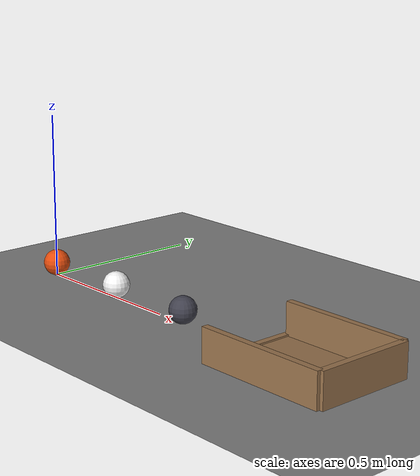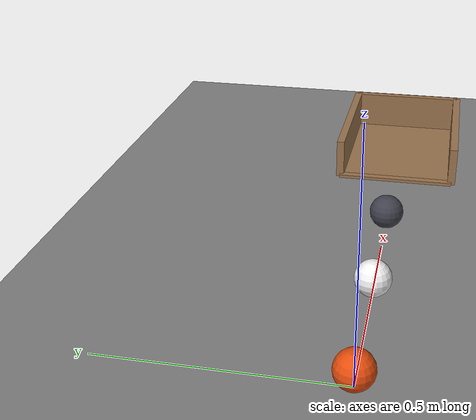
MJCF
<mujoco model="three_balls_and_a_cup">
  <compiler angle="radian"/>
  <option timestep="0.002"/>
  <worldbody>
    <geom name="floor" type="plane" size="6 6 0.1" friction="0.8 0.005 0.002"/>
    <body name="ball1" pos="0 0 0.04">
      <freejoint/>
      <geom name="ball1" type="sphere" pos="0 0 0" size="0.04" mass="0.17" condim="6" friction="0.8 0.005 0.002" solref="0.01 0.2" rgba="0.9 0.3 0.05 1"/>
    </body>
    <body name="ball2" pos="0.3 0 0.04">
      <freejoint/>
      <geom name="ball2" type="sphere" pos="0 0 0" size="0.04" mass="0.17" condim="6" friction="0.8 0.005 0.002" solref="0.01 0.2" rgba="0.95 0.95 0.95 1"/>
    </body>
    <body name="ball3" pos="0.6 0 0.04">
      <freejoint/>
      <geom name="ball3" type="sphere" pos="0 0 0" size="0.04" mass="0.17" condim="6" friction="0.8 0.005 0.002" solref="0.01 0.2" rgba="0.25 0.25 0.3 1"/>
    </body>
    <body name="cup">
      <geom name="cup_base" type="box" pos="1.06 0 0.0015" size="0.2 0.15 0.0015" friction="0.8 0.005 0.015" solref="0.01 1" rgba="0.6 0.45 0.3 1"/>
      <geom name="cup_near_wall" type="box" pos="0.86 0 0.004" size="0.01 0.15 0.004" friction="0.8 0.005 0.015" solref="0.01 1" rgba="0.6 0.45 0.3 1"/>
      <geom name="cup_far_wall" type="box" pos="1.26 0 0.05" size="0.01 0.15 0.05" friction="0.8 0.005 0.015" solref="0.01 1" rgba="0.6 0.45 0.3 1"/>
      <geom name="cup_left_wall" type="box" pos="1.06 0.15 0.05" size="0.2 0.01 0.05" friction="0.8 0.005 0.015" solref="0.01 1" rgba="0.6 0.45 0.3 1"/>
      <geom name="cup_right_wall" type="box" pos="1.06 -0.15 0.05" size="0.2 0.01 0.05" friction="0.8 0.005 0.015" solref="0.01 1" rgba="0.6 0.45 0.3 1"/>
    </body>
  </worldbody>
  <keyframe>
    <key name="start" qpos="0 0 0.04 1 0 0 0 0.3 0 0.04 1 0 0 0 0.6 0 0.04 1 0 0 0" qvel="1.4 0 0 0 35 0 0 0 0 0 0 0 0 0 0 0 0 0"/>
  </keyframe>
</mujoco>
